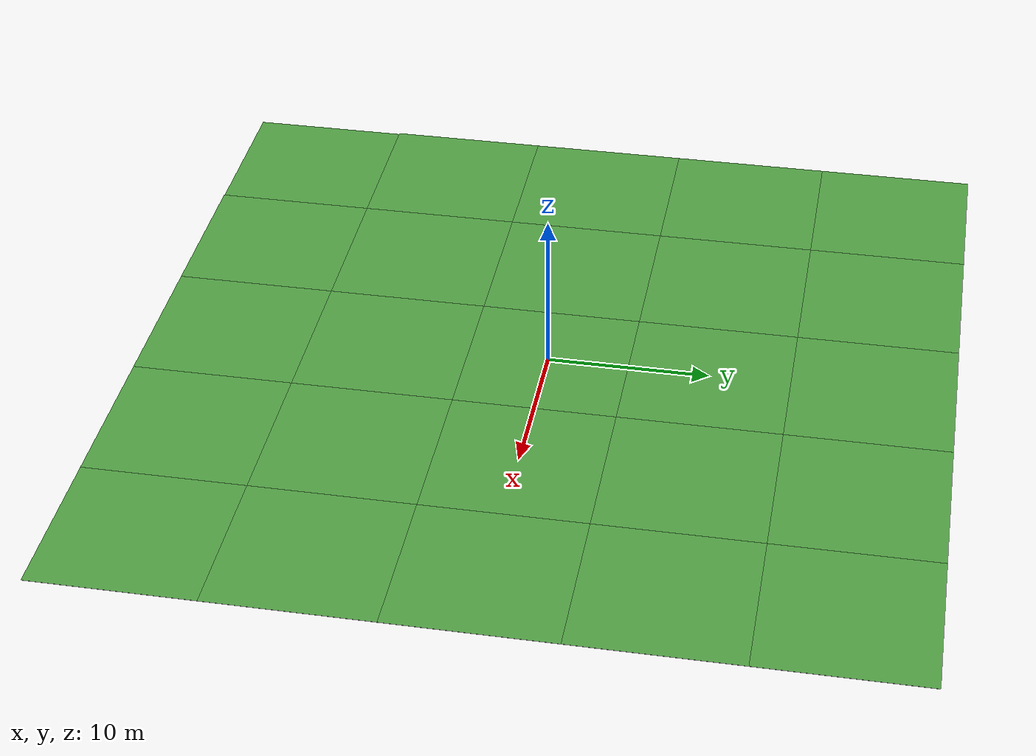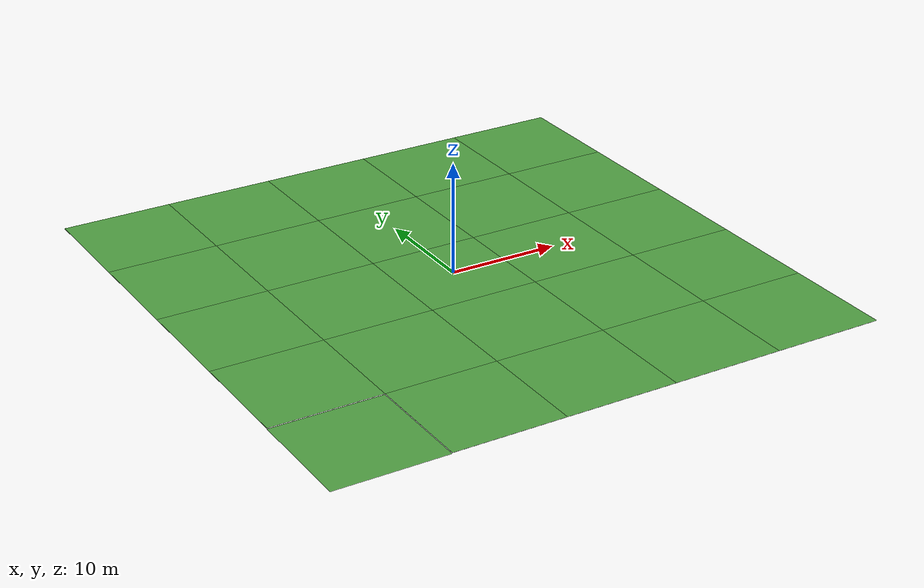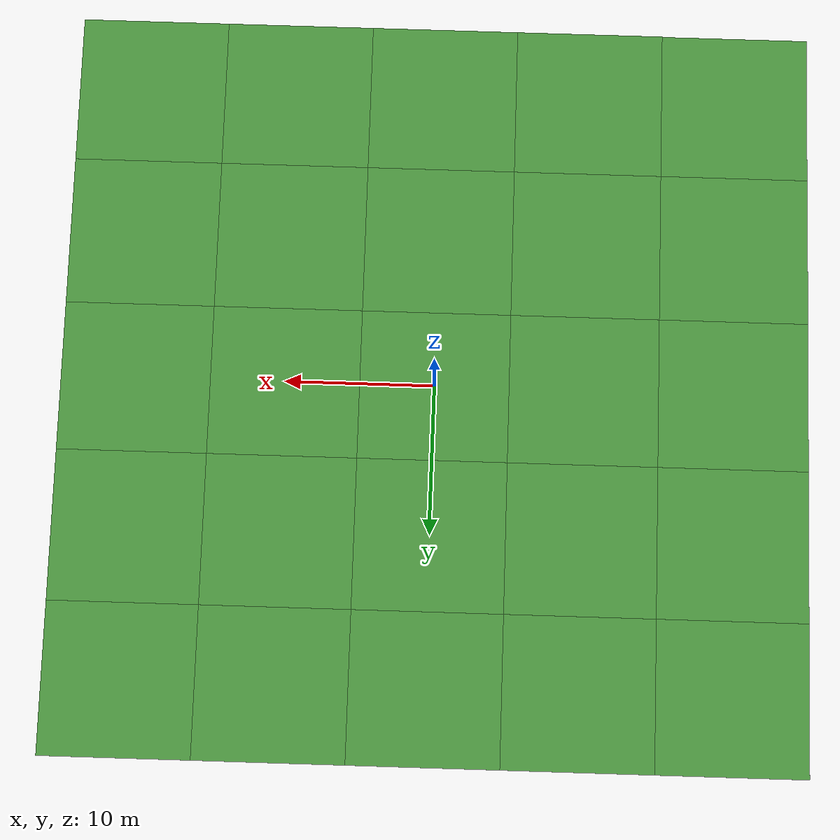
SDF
<sdf version="1.4">
 <world name="vrc_task_1">
  <scene>
   <ambient>0.4 0.4 0.4 1.0</ambient>
   <grid>false</grid>
   <sky><clouds><speed>4</speed></clouds></sky>
  </scene>
  <physics type="ode">
   <gravity>0 0 -9.81</gravity>
   <ode>
    <solver>
     <use_dynamic_moi_rescaling>true</use_dynamic_moi_rescaling>
     <type>quick</type>
     <iters>50</iters>
     <sor>1.0</sor>
    </solver>
    <constraints>
     <cfm>0.0</cfm>
     <erp>0.2</erp>
     <contact_max_correcting_vel>100.0</contact_max_correcting_vel>
     <contact_surface_layer>0.0</contact_surface_layer>
    </constraints>
   </ode>
   <real_time_update_rate>1000</real_time_update_rate>
   <max_step_size>0.01</max_step_size>
  </physics>
  <light type="directional" name="sun">
   <cast_shadows>false</cast_shadows>
   <pose>0 0 100 0 0 0</pose>
   <diffuse>0.8 0.8 0.8 1</diffuse>
   <specular>0.9 0.9 0.9 1</specular>
   <attenuation>
    <range>1000</range>
    <constant>0.9</constant>
    <linear>0.01</linear>
    <quadratic>0.001</quadratic>
   </attenuation>
   <direction>0.2 0.2 -0.9</direction>
  </light>
  <include><uri>model://grass_plane_medium</uri></include>
  <include><name>pine_tree_1</name><uri>model://pine_tree</uri><pose>-4.5 8.7 0   0 0 0</pose></include>
  <include><name>pine_tree_2</name><uri>model://pine_tree</uri><pose>-3.5 -9.5 0   0 0 0</pose></include>
  <include><name>pine_tree_3</name><uri>model://pine_tree</uri><pose>-7 4 0   0 0 0</pose></include>
  <include><name>pine_tree_5</name><uri>model://pine_tree</uri><pose>19 13 0   0 0 0</pose></include>
  <include><name>pine_tree_7</name><uri>model://pine_tree</uri><pose>-22 -8 0   0 0 0</pose></include>
  <include><name>pine_tree_9</name><uri>model://pine_tree</uri><pose>16 -11.5 0  0 0 0</pose></include>
  <plugin name="ardupilot_sitl_gazebo_plugin" filename="libardupilot_sitl_gazebo_plugin.so"/>
 </world>
</sdf>

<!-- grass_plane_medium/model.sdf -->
<sdf version='1.4'>
  <model name='grass_plan_medium'>
    <static>true</static>
    <link name='link'>
      <collision name='collision'>
        <geometry>
          <plane>
            <normal>0 0 1</normal>
            <size>50 50</size>
          </plane>
        </geometry>
        <surface>
          <friction>
            <ode>
              <mu>0.5</mu>
              <mu2>.5</mu2>
            </ode>
          </friction>
        </surface>
      </collision>

      <visual name='visual_0'>
        <pose>-20 -20 0 0 0 0</pose>

        <cast_shadows>false</cast_shadows>
        <geometry>
          <plane>
            <normal>0 0 1</normal>
            <size>10 10</size>
          </plane>
        </geometry>
        <material>
          <script>
            <uri>model://grass_plane/materials/scripts</uri>
            <uri>model://grass_plane/materials/textures</uri>
            <name>vrc/grass</name>
          </script>
        </material>
      </visual>

      <visual name='visual_1'>
        <pose>-10 -20 0 0 0 0</pose>

        <cast_shadows>false</cast_shadows>
        <geometry>
          <plane>
            <normal>0 0 1</normal>
            <size>10 10</size>
          </plane>
        </geometry>
        <material>
          <script>
            <uri>model://grass_plane/materials/scripts</uri>
            <uri>model://grass_plane/materials/textures</uri>
            <name>vrc/grass</name>
          </script>
        </material>
      </visual>

      <visual name='visual_2'>
        <pose>0 -20 0 0 0 0</pose>

        <cast_shadows>false</cast_shadows>
        <geometry>
          <plane>
            <normal>0 0 1</normal>
            <size>10 10</size>
          </plane>
        </geometry>
        <material>
          <script>
            <uri>model://grass_plane/materials/scripts</uri>
            <uri>model://grass_plane/materials/textures</uri>
            <name>vrc/grass</name>
          </script>
        </material>
      </visual>

      <visual name='visual_3'>
        <pose>10 -20 0 0 0 0</pose>

        <cast_shadows>false</cast_shadows>
        <geometry>
          <plane>
            <normal>0 0 1</normal>
            <size>10 10</size>
          </plane>
        </geometry>
        <material>
          <script>
            <uri>model://grass_plane/materials/scripts</uri>
            <uri>model://grass_plane/materials/textures</uri>
            <name>vrc/grass</name>
          </script>
        </material>
      </visual>

      <visual name='visual_4'>
        <pose>20 -20 0 0 0 0</pose>

        <cast_shadows>false</cast_shadows>
        <geometry>
          <plane>
            <normal>0 0 1</normal>
            <size>10 10</size>
          </plane>
        </geometry>
        <material>
          <script>
            <uri>model://grass_plane/materials/scripts</uri>
            <uri>model://grass_plane/materials/textures</uri>
            <name>vrc/grass</name>
          </script>
        </material>
      </visual>

      <visual name='visual_6'>
        <pose>-20 -10 0 0 0 0</pose>

        <cast_shadows>false</cast_shadows>
        <geometry>
          <plane>
            <normal>0 0 1</normal>
            <size>10 10</size>
          </plane>
        </geometry>
        <material>
          <script>
            <uri>model://grass_plane/materials/scripts</uri>
            <uri>model://grass_plane/materials/textures</uri>
            <name>vrc/grass</name>
          </script>
        </material>
      </visual>

      <visual name='visual_7'>
        <pose>-10 -10 0 0 0 0</pose>

        <cast_shadows>false</cast_shadows>
        <geometry>
          <plane>
            <normal>0 0 1</normal>
            <size>10 10</size>
          </plane>
        </geometry>
        <material>
          <script>
            <uri>model://grass_plane/materials/scripts</uri>
            <uri>model://grass_plane/materials/textures</uri>
            <name>vrc/grass</name>
          </script>
        </material>
      </visual>

      <visual name='visual_8'>
        <pose>0 -10 0 0 0 0</pose>

        <cast_shadows>false</cast_shadows>
        <geometry>
          <plane>
            <normal>0 0 1</normal>
            <size>10 10</size>
          </plane>
        </geometry>
        <material>
          <script>
            <uri>model://grass_plane/materials/scripts</uri>
            <uri>model://grass_plane/materials/textures</uri>
            <name>vrc/grass</name>
          </script>
        </material>
      </visual>

      <visual name='visual_9'>
        <pose>10 -10 0 0 0 0</pose>

        <cast_shadows>false</cast_shadows>
        <geometry>
          <plane>
            <normal>0 0 1</normal>
            <size>10 10</size>
          </plane>
        </geometry>
        <material>
          <script>
            <uri>model://grass_plane/materials/scripts</uri>
            <uri>model://grass_plane/materials/textures</uri>
            <name>vrc/grass</name>
          </script>
        </material>
      </visual>

      <visual name='visual_10'>
        <pose>20 -10 0 0 0 0</pose>

        <cast_shadows>false</cast_shadows>
        <geometry>
          <plane>
            <normal>0 0 1</normal>
            <size>10 10</size>
          </plane>
        </geometry>
        <material>
          <script>
            <uri>model://grass_plane/materials/scripts</uri>
            <uri>model://grass_plane/materials/textures</uri>
            <name>vrc/grass</name>
          </script>
        </material>
      </visual>

      <visual name='visual_13'>
        <pose>-20 0 0 0 0 0</pose>

        <cast_shadows>false</cast_shadows>
        <geometry>
          <plane>
            <normal>0 0 1</normal>
            <size>10 10</size>
          </plane>
        </geometry>
        <material>
          <script>
            <uri>model://grass_plane/materials/scripts</uri>
            <uri>model://grass_plane/materials/textures</uri>
            <name>vrc/grass</name>
          </script>
        </material>
      </visual>

      <visual name='visual_14'>
        <pose>-10 0 0 0 0 0</pose>

        <cast_shadows>false</cast_shadows>
        <geometry>
          <plane>
            <normal>0 0 1</normal>
            <size>10 10</size>
          </plane>
        </geometry>
        <material>
          <script>
            <uri>model://grass_plane/materials/scripts</uri>
            <uri>model://grass_plane/materials/textures</uri>
            <name>vrc/grass</name>
          </script>
        </material>
      </visual>

      <visual name='visual_15'>
        <pose>0 0 0 0 0 0</pose>

        <cast_shadows>false</cast_shadows>
        <geometry>
          <plane>
            <normal>0 0 1</normal>
            <size>10 10</size>
          </plane>
        </geometry>
        <material>
          <script>
            <uri>model://grass_plane/materials/scripts</uri>
            <uri>model://grass_plane/materials/textures</uri>
            <name>vrc/grass</name>
          </script>
        </material>
      </visual>

      <visual name='visual_16'>
        <pose>10 0 0 0 0 0</pose>

        <cast_shadows>false</cast_shadows>
        <geometry>
          <plane>
            <normal>0 0 1</normal>
            <size>10 10</size>
          </plane>
        </geometry>
        <material>
          <script>
            <uri>model://grass_plane/materials/scripts</uri>
            <uri>model://grass_plane/materials/textures</uri>
            <name>vrc/grass</name>
          </script>
        </material>
      </visual>

      <visual name='visual_17'>
        <pose>20 0 0 0 0 0</pose>

        <cast_shadows>false</cast_shadows>
        <geometry>
          <plane>
            <normal>0 0 1</normal>
            <size>10 10</size>
          </plane>
        </geometry>
        <material>
          <script>
            <uri>model://grass_plane/materials/scripts</uri>
            <uri>model://grass_plane/materials/textures</uri>
            <name>vrc/grass</name>
          </script>
        </material>
      </visual>

      <visual name='visual_22'>
        <pose>-20 10 0 0 0 0</pose>

        <cast_shadows>false</cast_shadows>
        <geometry>
          <plane>
            <normal>0 0 1</normal>
            <size>10 10</size>
          </plane>
        </geometry>
        <material>
          <script>
            <uri>model://grass_plane/materials/scripts</uri>
            <uri>model://grass_plane/materials/textures</uri>
            <name>vrc/grass</name>
          </script>
        </material>
      </visual>

      <visual name='visual_23'>
        <pose>-10 10 0 0 0 0</pose>

        <cast_shadows>false</cast_shadows>
        <geometry>
          <plane>
            <normal>0 0 1</normal>
            <size>10 10</size>
          </plane>
        </geometry>
        <material>
          <script>
            <uri>model://grass_plane/materials/scripts</uri>
            <uri>model://grass_plane/materials/textures</uri>
            <name>vrc/grass</name>
          </script>
        </material>
      </visual>

      <visual name='visual_24'>
        <pose>0 10 0 0 0 0</pose>

        <cast_shadows>false</cast_shadows>
        <geometry>
          <plane>
            <normal>0 0 1</normal>
            <size>10 10</size>
          </plane>
        </geometry>
        <material>
          <script>
            <uri>model://grass_plane/materials/scripts</uri>
            <uri>model://grass_plane/materials/textures</uri>
            <name>vrc/grass</name>
          </script>
        </material>
      </visual>

      <visual name='visual_25'>
        <pose>10 10 0 0 0 0</pose>

        <cast_shadows>false</cast_shadows>
        <geometry>
          <plane>
            <normal>0 0 1</normal>
            <size>10 10</size>
          </plane>
        </geometry>
        <material>
          <script>
            <uri>model://grass_plane/materials/scripts</uri>
            <uri>model://grass_plane/materials/textures</uri>
            <name>vrc/grass</name>
          </script>
        </material>
      </visual>

      <visual name='visual_26'>
        <pose>20 10 0 0 0 0</pose>

        <cast_shadows>false</cast_shadows>
        <geometry>
          <plane>
            <normal>0 0 1</normal>
            <size>10 10</size>
          </plane>
        </geometry>
        <material>
          <script>
            <uri>model://grass_plane/materials/scripts</uri>
            <uri>model://grass_plane/materials/textures</uri>
            <name>vrc/grass</name>
          </script>
        </material>
      </visual>

    <visual name='visual_22b'>
        <pose>-20 20 0 0 0 0</pose>

        <cast_shadows>false</cast_shadows>
        <geometry>
          <plane>
            <normal>0 0 1</normal>
            <size>10 10</size>
          </plane>
        </geometry>
        <material>
          <script>
            <uri>model://grass_plane/materials/scripts</uri>
            <uri>model://grass_plane/materials/textures</uri>
            <name>vrc/grass</name>
          </script>
        </material>
      </visual>

      <visual name='visual_23b'>
        <pose>-10 20 0 0 0 0</pose>

        <cast_shadows>false</cast_shadows>
        <geometry>
          <plane>
            <normal>0 0 1</normal>
            <size>10 10</size>
          </plane>
        </geometry>
        <material>
          <script>
            <uri>model://grass_plane/materials/scripts</uri>
            <uri>model://grass_plane/materials/textures</uri>
            <name>vrc/grass</name>
          </script>
        </material>
      </visual>

      <visual name='visual_24b'>
        <pose>0 20 0 0 0 0</pose>

        <cast_shadows>false</cast_shadows>
        <geometry>
          <plane>
            <normal>0 0 1</normal>
            <size>10 10</size>
          </plane>
        </geometry>
        <material>
          <script>
            <uri>model://grass_plane/materials/scripts</uri>
            <uri>model://grass_plane/materials/textures</uri>
            <name>vrc/grass</name>
          </script>
        </material>
      </visual>

      <visual name='visual_25b'>
        <pose>10 20 0 0 0 0</pose>

        <cast_shadows>false</cast_shadows>
        <geometry>
          <plane>
            <normal>0 0 1</normal>
            <size>10 10</size>
          </plane>
        </geometry>
        <material>
          <script>
            <uri>model://grass_plane/materials/scripts</uri>
            <uri>model://grass_plane/materials/textures</uri>
            <name>vrc/grass</name>
          </script>
        </material>
      </visual>

      <visual name='visual_32'>
        <pose>20 20 0 0 0 0</pose>

        <cast_shadows>false</cast_shadows>
        <geometry>
          <plane>
            <normal>0 0 1</normal>
            <size>10 10</size>
          </plane>
        </geometry>
        <material>
          <script>
            <uri>model://grass_plane/materials/scripts</uri>
            <uri>model://grass_plane/materials/textures</uri>
            <name>vrc/grass</name>
          </script>
        </material>
      </visual>
    </link>
  </model>
</sdf>

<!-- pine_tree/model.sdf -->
<sdf version="1.5">
  <model name="Pine Tree">
    <pose>0 0 0  0 0 0</pose>
    <static>true</static>
    <link name="link">
      <inertial>
        <mass>40.0</mass>
        <inertia>
          <ixx>1</ixx>
          <ixy>0</ixy>
          <ixz>0</ixz>
          <iyy>1</iyy>
          <iyz>0</iyz>
          <izz>1</izz>
        </inertia>
      </inertial>

      <collision name="collision">
        <geometry>
          <cylinder>
            <length>5</length>
            <radius>0.3</radius>
          </cylinder>
        </geometry>
        <pose>1.25 1.25 2.5  0 0 0</pose>
      </collision>

      <visual name="visual">
        <geometry>
          <mesh>
            <uri>model://pine_tree/meshes/pine_tree.dae</uri>
            <scale>1.5 1.5 1.5</scale>
          </mesh>
	      </geometry>
      </visual>
    </link>
  </model>
</sdf>
